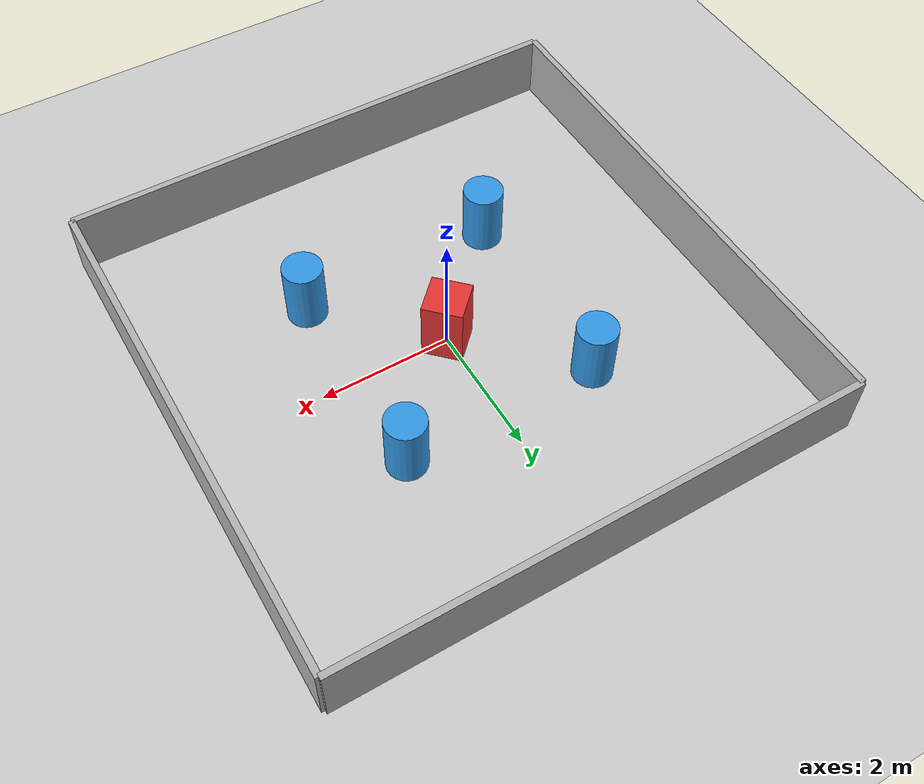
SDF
<?xml version="1.0" ?>
<sdf version="1.8">
  <world name="tb3_world">
    <physics name="1ms" type="ignored">
      <max_step_size>0.001</max_step_size>
      <real_time_factor>1.0</real_time_factor>
    </physics>
    <plugin filename="gz-sim-physics-system" name="gz::sim::systems::Physics"/>
    <plugin filename="gz-sim-user-commands-system" name="gz::sim::systems::UserCommands"/>
    <plugin filename="gz-sim-scene-broadcaster-system" name="gz::sim::systems::SceneBroadcaster"/>

    <!-- Light -->
    <light type="directional" name="sun">
      <cast_shadows>true</cast_shadows>
      <pose>0 0 10 0 0 0</pose>
      <diffuse>0.8 0.8 0.8 1</diffuse>
      <specular>0.2 0.2 0.2 1</specular>
      <attenuation>
        <range>1000</range>
        <constant>0.9</constant>
        <linear>0.01</linear>
        <quadratic>0.001</quadratic>
      </attenuation>
      <direction>-0.5 0.1 -0.9</direction>
    </light>

    <!-- Ground Plane -->
    <model name="ground_plane">
      <static>true</static>
      <link name="link">
        <collision name="collision">
          <geometry>
            <plane>
              <normal>0 0 1</normal>
              <size>100 100</size>
            </plane>
          </geometry>
          <surface>
            <friction>
              <ode>
                <mu>100</mu>
                <mu2>50</mu2>
              </ode>
            </friction>
          </surface>
        </collision>
        <visual name="visual">
          <geometry>
            <plane>
              <normal>0 0 1</normal>
              <size>100 100</size>
            </plane>
          </geometry>
          <material>
            <ambient>0.8 0.8 0.8 1</ambient>
            <diffuse>0.8 0.8 0.8 1</diffuse>
            <specular>0.8 0.8 0.8 1</specular>
          </material>
        </visual>
      </link>
    </model>

    <!-- Bounding Walls -->
    <model name="outer_walls">
      <static>true</static>
      <!-- Wall North -->
      <link name="wall_n">
        <pose>0 4 0.5 0 0 0</pose>
        <collision name="collision">
          <geometry><box><size>8 0.1 1.0</size></box></geometry>
        </collision>
        <visual name="visual">
          <geometry><box><size>8 0.1 1.0</size></box></geometry>
          <material><ambient>0.5 0.5 0.5 1</ambient><diffuse>0.7 0.7 0.7 1</diffuse></material>
        </visual>
      </link>
      <!-- Wall South -->
      <link name="wall_s">
        <pose>0 -4 0.5 0 0 0</pose>
        <collision name="collision">
          <geometry><box><size>8 0.1 1.0</size></box></geometry>
        </collision>
        <visual name="visual">
          <geometry><box><size>8 0.1 1.0</size></box></geometry>
          <material><ambient>0.5 0.5 0.5 1</ambient><diffuse>0.7 0.7 0.7 1</diffuse></material>
        </visual>
      </link>
      <!-- Wall East -->
      <link name="wall_e">
        <pose>4 0 0.5 0 0 1.5708</pose>
        <collision name="collision">
          <geometry><box><size>8 0.1 1.0</size></box></geometry>
        </collision>
        <visual name="visual">
          <geometry><box><size>8 0.1 1.0</size></box></geometry>
          <material><ambient>0.5 0.5 0.5 1</ambient><diffuse>0.7 0.7 0.7 1</diffuse></material>
        </visual>
      </link>
      <!-- Wall West -->
      <link name="wall_w">
        <pose>-4 0 0.5 0 0 1.5708</pose>
        <collision name="collision">
          <geometry><box><size>8 0.1 1.0</size></box></geometry>
        </collision>
        <visual name="visual">
          <geometry><box><size>8 0.1 1.0</size></box></geometry>
          <material><ambient>0.5 0.5 0.5 1</ambient><diffuse>0.7 0.7 0.7 1</diffuse></material>
        </visual>
      </link>
    </model>

    <!-- Columns (Obstacles) -->
    <model name="columns">
      <static>true</static>
      <!-- Cylinder 1 -->
      <link name="col_1">
        <pose>1.5 1.5 0.5 0 0 0</pose>
        <collision name="collision">
          <geometry><cylinder><radius>0.3</radius><length>1.0</length></cylinder></geometry>
        </collision>
        <visual name="visual">
          <geometry><cylinder><radius>0.3</radius><length>1.0</length></cylinder></geometry>
          <material><ambient>0.1 0.5 0.8 1</ambient><diffuse>0.2 0.6 0.9 1</diffuse></material>
        </visual>
      </link>
      <!-- Cylinder 2 -->
      <link name="col_2">
        <pose>-1.5 1.5 0.5 0 0 0</pose>
        <collision name="collision">
          <geometry><cylinder><radius>0.3</radius><length>1.0</length></cylinder></geometry>
        </collision>
        <visual name="visual">
          <geometry><cylinder><radius>0.3</radius><length>1.0</length></cylinder></geometry>
          <material><ambient>0.1 0.5 0.8 1</ambient><diffuse>0.2 0.6 0.9 1</diffuse></material>
        </visual>
      </link>
      <!-- Cylinder 3 -->
      <link name="col_3">
        <pose>1.5 -1.5 0.5 0 0 0</pose>
        <collision name="collision">
          <geometry><cylinder><radius>0.3</radius><length>1.0</length></cylinder></geometry>
        </collision>
        <visual name="visual">
          <geometry><cylinder><radius>0.3</radius><length>1.0</length></cylinder></geometry>
          <material><ambient>0.1 0.5 0.8 1</ambient><diffuse>0.2 0.6 0.9 1</diffuse></material>
        </visual>
      </link>
      <!-- Cylinder 4 -->
      <link name="col_4">
        <pose>-1.5 -1.5 0.5 0 0 0</pose>
        <collision name="collision">
          <geometry><cylinder><radius>0.3</radius><length>1.0</length></cylinder></geometry>
        </collision>
        <visual name="visual">
          <geometry><cylinder><radius>0.3</radius><length>1.0</length></cylinder></geometry>
          <material><ambient>0.1 0.5 0.8 1</ambient><diffuse>0.2 0.6 0.9 1</diffuse></material>
        </visual>
      </link>
      <!-- Middle box -->
      <link name="box_mid">
        <pose>0 0 0.5 0 0 0.785</pose>
        <collision name="collision">
          <geometry><box><size>0.6 0.6 1.0</size></box></geometry>
        </collision>
        <visual name="visual">
          <geometry><box><size>0.6 0.6 1.0</size></box></geometry>
          <material><ambient>0.8 0.1 0.1 1</ambient><diffuse>0.9 0.2 0.2 1</diffuse></material>
        </visual>
      </link>
    </model>

  </world>
</sdf>
